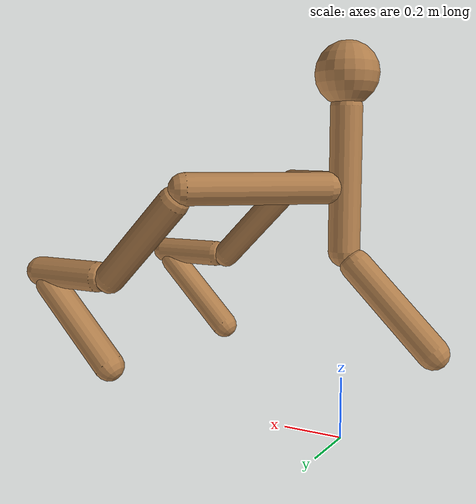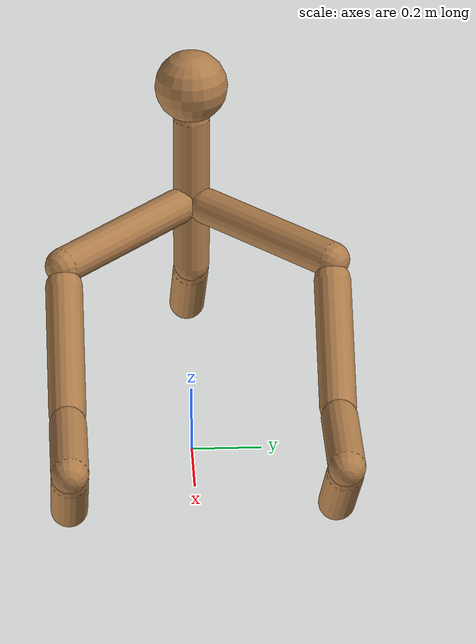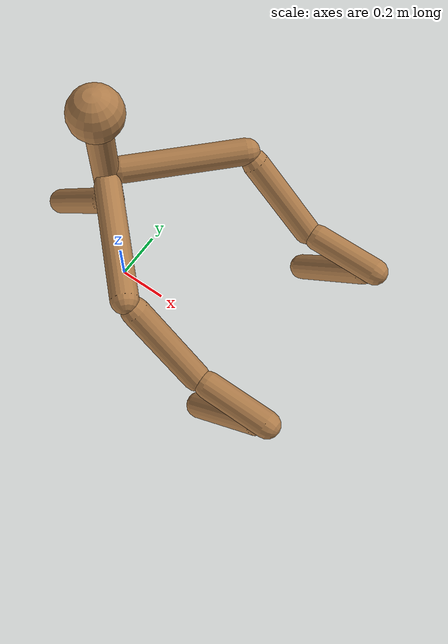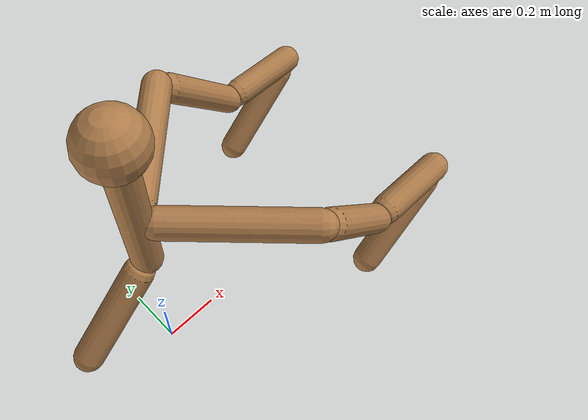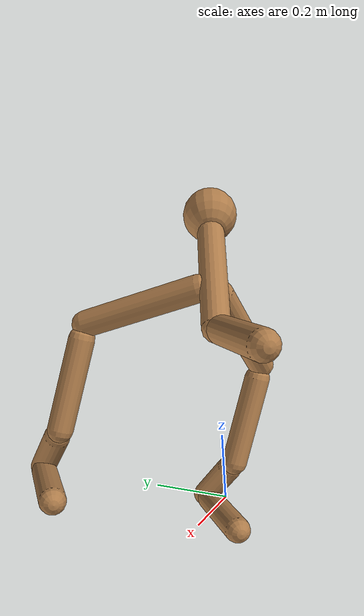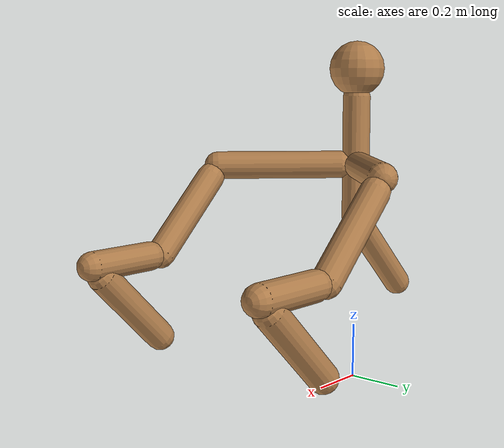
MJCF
<?xml version='1.0' encoding='UTF-8'?>
<!-- Universal Animal Template: unimal -->
<mujoco model="unimal">
  <compiler angle="degree"/>
  <size njmax="2000" nconmax="500"/>
  <option timestep=".005">
    <flag filterparent="disable"/>
  </option>
  <!-- Common defaults to make search space tractable -->
  <default>
    <!-- Define motor defaults -->
    <motor ctrlrange="-1 1" ctrllimited="true"/>
    <!-- Define joint defaults -->
    <default class="normal_joint">
      <joint type="hinge" damping="1" stiffness="1" armature="1" limited="true" range="-120 120" solimplimit="0 0.99 0.01"/>
    </default>
    <default class="walker_joint">
      <joint type="hinge" damping="0.2" stiffness="1" armature=".01" limited="true" range="-120 120" solimplimit="0 0.99 0.01"/>
    </default>
    <default class="stiff_joint">
      <joint type="hinge" damping="5" stiffness="10" armature=".01" limited="true" solimplimit="0 0.99 0.01"/>
    </default>
    <default class="free">
      <joint limited="false" damping="0" armature="0" stiffness="0"/>
    </default>
    <default class="growth_site">
      <site size="1e-6 1e-6 1e-6"/>
    </default>
    <default class="torso_growth_site">
      <site size="1e-6 1e-6 1e-6"/>
    </default>
    <default class="mirror_growth_site">
      <site size="1e-6 1e-6 1e-6"/>
    </default>
    <default class="btm_pos_site">
      <site size="1e-6 1e-6 1e-6"/>
    </default>
    <default class="box_face_site">
      <site size="1e-6 1e-6 1e-6"/>
    </default>
    <default class="imu_vel">
      <site type="box" size="0.05" rgba="1 0 0 1"/>
    </default>
    <default class="touch_site">
      <site group="3" rgba="0 0 1 .3"/>
    </default>
    <default class="food_site">
      <site material="food" size="0.15"/>
    </default>
    <!-- Define geom defaults -->
    <geom type="capsule" condim="3" friction="0.7 0.1 0.1" material="self"/>
  </default>
  <worldbody>
    <light diffuse="1 1 1" directional="true" exponent="1" pos="0 0 1" specular=".1 .1 .1"/>
    <!-- Programatically generated xml goes here -->
    <body name="torso/0" pos="0 0 1.16">
      <joint name="root" type="free" class="free"/>
      <site name="root" class="imu_vel"/>
      <geom name="torso/0" type="sphere" size="0.1" condim="3" density="600"/>
      <camera name="side" pos="0 -7 2" xyaxes="1 0 0 0 1 2" mode="trackcom"/>
      <site name="torso/0" class="growth_site" pos="0 0 0"/>
      <site name="torso/btm_pos/0" class="btm_pos_site" pos="0 0 -0.1"/>
      <site name="torso/touch/0" class="touch_site" size="0.11"/>
      <site name="torso/vertical/0" class="torso_growth_site" pos="0 0 -0.1"/>
      <body name="limb/0" pos="0.0 0.0 -0.1">
        <joint name="limbx/0" type="hinge" class="normal_joint" range="-60 0" pos="0.0 0.0 0.05" axis="1.0 0.0 0.0"/>
        <geom name="limb/0" type="capsule" fromto="0.0 0.0 0.0 0.0 0.0 -0.45" size="0.05" density="800"/>
        <site name="limb/mid/0" class="growth_site" pos="0.0 0.0 -0.25"/>
        <site name="limb/btm/0" class="growth_site" pos="0.0 0.0 -0.45"/>
        <site name="limb/btm_pos/0" class="btm_pos_site" pos="0.0 0.0 -0.45"/>
        <site name="limb/touch/0" class="touch_site" size="0.060000000000000005" fromto="0.0 0.0 0.0 0.0 0.0 -0.45" type="capsule"/>
        <body name="limb/7" pos="-0.04 0.0 -0.49">
          <joint name="limbx/7" type="hinge" class="normal_joint" range="-90 0" pos="0.04 0.0 0.04" axis="0.7071 0.0 -0.7071"/>
          <geom name="limb/7" type="capsule" fromto="0.0 0.0 0.0 -0.25 0.0 -0.25" size="0.05" density="800"/>
          <site name="limb/mid/7" class="growth_site" pos="-0.14 0.0 -0.14"/>
          <site name="limb/btm/7" class="growth_site" pos="-0.25 0.0 -0.25"/>
          <site name="limb/btm_pos/7" class="btm_pos_site" pos="-0.25 0.0 -0.25"/>
          <site name="limb/touch/7" class="touch_site" size="0.060000000000000005" fromto="0.0 0.0 0.0 -0.25 0.0 -0.25" type="capsule"/>
        </body>
        <body name="limb/10" pos="0.04 0.04 -0.25">
          <joint name="limbx/10" type="hinge" class="normal_joint" range="-45 0" pos="-0.04 -0.04 0.0" axis="0.5 -0.5 0.7071"/>
          <geom name="limb/10" type="capsule" fromto="0.0 0.0 0.0 0.32 0.32 0.0" size="0.05" density="800"/>
          <site name="limb/mid/10" class="mirror_growth_site" pos="0.18 0.18 0.0"/>
          <site name="limb/btm/10" class="mirror_growth_site" pos="0.32 0.32 0.0"/>
          <site name="limb/btm_pos/10" class="btm_pos_site" pos="0.35 0.35 0.0"/>
          <site name="limb/touch/10" class="touch_site" size="0.060000000000000005" fromto="0.0 0.0 0.0 0.32 0.32 0.0" type="capsule"/>
          <body name="limb/12" pos="0.36 0.32 -0.04">
            <joint name="limbx/12" type="hinge" class="normal_joint" range="-30 0" pos="-0.04 0.0 0.04" axis="0.7071 0.0 0.7071"/>
            <joint name="limby/12" type="hinge" class="normal_joint" range="-30 30" pos="-0.04 0.0 0.04" axis="-0.0 1.0 0.0"/>
            <geom name="limb/12" type="capsule" fromto="0.0 0.0 0.0 0.25 0.0 -0.25" size="0.05" density="800"/>
            <site name="limb/mid/12" class="mirror_growth_site" pos="0.14 0.0 -0.14"/>
            <site name="limb/btm/12" class="mirror_growth_site" pos="0.25 0.0 -0.25"/>
            <site name="limb/btm_pos/12" class="btm_pos_site" pos="0.28 0.0 -0.28"/>
            <site name="limb/touch/12" class="touch_site" size="0.060000000000000005" fromto="0.0 0.0 0.0 0.25 0.0 -0.25" type="capsule"/>
            <body name="limb/16" pos="0.3 0.0 -0.25">
              <joint name="limbx/16" type="hinge" class="normal_joint" range="-30 30" pos="-0.05 0.0 0.0" axis="0.0 0.0 1.0"/>
              <geom name="limb/16" type="capsule" fromto="0.0 0.0 0.0 0.25 0.0 0.0" size="0.05" density="800"/>
              <site name="limb/mid/16" class="mirror_growth_site" pos="0.15 0.0 0.0"/>
              <site name="limb/btm/16" class="mirror_growth_site" pos="0.25 0.0 0.0"/>
              <site name="limb/btm_pos/16" class="btm_pos_site" pos="0.3 0.0 0.0"/>
              <site name="limb/touch/16" class="touch_site" size="0.060000000000000005" fromto="0.0 0.0 0.0 0.25 0.0 0.0" type="capsule"/>
              <body name="limb/18" pos="0.21 0.0 -0.04">
                <joint name="limbx/18" type="hinge" class="normal_joint" range="0 90" pos="0.04 0.0 0.04" axis="0.7071 0.0 -0.7071"/>
                <joint name="limby/18" type="hinge" class="normal_joint" range="0 45" pos="0.04 0.0 0.04" axis="0.0 1.0 0.0"/>
                <geom name="limb/18" type="capsule" fromto="0.0 0.0 0.0 -0.25 0.0 -0.25" size="0.05" density="800.0"/>
                <site name="limb/mid/18" class="mirror_growth_site" pos="-0.14 0.0 -0.14"/>
                <site name="limb/btm/18" class="mirror_growth_site" pos="-0.25 0.0 -0.25"/>
                <site name="limb/btm_pos/18" class="btm_pos_site" pos="-0.28 0.0 -0.28"/>
                <site name="limb/touch/18" class="touch_site" size="0.060000000000000005" fromto="0.0 0.0 0.0 -0.25 0.0 -0.25" type="capsule"/>
              </body>
            </body>
          </body>
        </body>
        <body name="limb/11" pos="0.04 -0.04 -0.25">
          <joint name="limbx/11" type="hinge" class="normal_joint" range="-45 0" pos="-0.04 0.04 0.0" axis="0.5 0.5 0.7071"/>
          <geom name="limb/11" type="capsule" fromto="0.0 0.0 0.0 0.32 -0.32 0.0" size="0.05" density="800"/>
          <site name="limb/mid/11" class="mirror_growth_site" pos="0.18 -0.18 0.0"/>
          <site name="limb/btm/11" class="mirror_growth_site" pos="0.32 -0.32 0.0"/>
          <site name="limb/btm_pos/11" class="btm_pos_site" pos="0.35 -0.35 0.0"/>
          <site name="limb/touch/11" class="touch_site" size="0.060000000000000005" fromto="0.0 0.0 0.0 0.32 -0.32 0.0" type="capsule"/>
          <body name="limb/13" pos="0.36 -0.32 -0.04">
            <joint name="limbx/13" type="hinge" class="normal_joint" range="-30 0" pos="-0.04 0.0 0.04" axis="0.7071 0.0 0.7071"/>
            <joint name="limby/13" type="hinge" class="normal_joint" range="-30 30" pos="-0.04 0.0 0.04" axis="-0.0 1.0 0.0"/>
            <geom name="limb/13" type="capsule" fromto="0.0 0.0 0.0 0.25 0.0 -0.25" size="0.05" density="800"/>
            <site name="limb/mid/13" class="mirror_growth_site" pos="0.14 0.0 -0.14"/>
            <site name="limb/btm/13" class="mirror_growth_site" pos="0.25 0.0 -0.25"/>
            <site name="limb/btm_pos/13" class="btm_pos_site" pos="0.28 0.0 -0.28"/>
            <site name="limb/touch/13" class="touch_site" size="0.060000000000000005" fromto="0.0 0.0 0.0 0.25 0.0 -0.25" type="capsule"/>
            <body name="limb/17" pos="0.3 0.0 -0.25">
              <joint name="limbx/17" type="hinge" class="normal_joint" range="-30 30" pos="-0.05 0.0 0.0" axis="0.0 0.0 1.0"/>
              <geom name="limb/17" type="capsule" fromto="0.0 0.0 0.0 0.25 0.0 0.0" size="0.05" density="800"/>
              <site name="limb/mid/17" class="mirror_growth_site" pos="0.15 0.0 0.0"/>
              <site name="limb/btm/17" class="mirror_growth_site" pos="0.25 0.0 0.0"/>
              <site name="limb/btm_pos/17" class="btm_pos_site" pos="0.3 0.0 0.0"/>
              <site name="limb/touch/17" class="touch_site" size="0.060000000000000005" fromto="0.0 0.0 0.0 0.25 0.0 0.0" type="capsule"/>
              <body name="limb/19" pos="0.21 0.0 -0.04">
                <joint name="limbx/19" type="hinge" class="normal_joint" range="0 90" pos="0.04 0.0 0.04" axis="0.7071 0.0 -0.7071"/>
                <joint name="limby/19" type="hinge" class="normal_joint" range="0 45" pos="0.04 0.0 0.04" axis="0.0 1.0 0.0"/>
                <geom name="limb/19" type="capsule" fromto="0.0 0.0 0.0 -0.25 0.0 -0.25" size="0.05" density="800.0"/>
                <site name="limb/mid/19" class="mirror_growth_site" pos="-0.14 0.0 -0.14"/>
                <site name="limb/btm/19" class="mirror_growth_site" pos="-0.25 0.0 -0.25"/>
                <site name="limb/btm_pos/19" class="btm_pos_site" pos="-0.28 0.0 -0.28"/>
                <site name="limb/touch/19" class="touch_site" size="0.060000000000000005" fromto="0.0 0.0 0.0 -0.25 0.0 -0.25" type="capsule"/>
              </body>
            </body>
          </body>
        </body>
      </body>
    </body>
  </worldbody>
  <actuator>
    <motor joint="limbx/0" gear="150" name="limbx/0"/>
    <motor joint="limbx/7" gear="200" name="limbx/7"/>
    <motor joint="limbx/10" gear="250" name="limbx/10"/>
    <motor joint="limbx/12" gear="250" name="limbx/12"/>
    <motor joint="limby/12" gear="250" name="limby/12"/>
    <motor joint="limbx/16" gear="300" name="limbx/16"/>
    <motor joint="limbx/18" gear="300" name="limbx/18"/>
    <motor joint="limby/18" gear="250" name="limby/18"/>
    <motor joint="limbx/11" gear="250" name="limbx/11"/>
    <motor joint="limbx/13" gear="250" name="limbx/13"/>
    <motor joint="limby/13" gear="250" name="limby/13"/>
    <motor joint="limbx/17" gear="300" name="limbx/17"/>
    <motor joint="limbx/19" gear="300" name="limbx/19"/>
    <motor joint="limby/19" gear="250" name="limby/19"/>
  </actuator>
  <sensor>
    <accelerometer name="torso_accel" site="root"/>
    <gyro name="torso_gyro" site="root"/>
    <velocimeter name="torso_vel" site="root"/>
    <subtreeangmom name="unimal_am" body="torso/0"/>
    <touch name="torso/0" site="torso/touch/0"/>
    <touch name="limb/0" site="limb/touch/0"/>
    <touch name="limb/7" site="limb/touch/7"/>
    <touch name="limb/10" site="limb/touch/10"/>
    <touch name="limb/12" site="limb/touch/12"/>
    <touch name="limb/16" site="limb/touch/16"/>
    <touch name="limb/18" site="limb/touch/18"/>
    <touch name="limb/11" site="limb/touch/11"/>
    <touch name="limb/13" site="limb/touch/13"/>
    <touch name="limb/17" site="limb/touch/17"/>
    <touch name="limb/19" site="limb/touch/19"/>
  </sensor>
  <!-- Add hfield assets -->
  <asset/>
  <!-- List of contacts to exclude -->
  <contact>
    <exclude name="limb/10:limb/11" body1="limb/10" body2="limb/11"/>
  </contact>
  <!-- Define material, texture etc -->
  <asset>
    <material name="grid" texture="grid" texrepeat="1 1" texuniform="true" reflectance="0"/>
    <material name="hfield" texture="hfield" texrepeat="1 1" texuniform="true" reflectance="0"/>
    <material name="wall" texture="wall" texrepeat="1 1" texuniform="true" reflectance=".5"/>
    <material name="platform" texture="platform" texrepeat="1 1" texuniform="true" reflectance=".5"/>
    <material name="boundary" texture="boundary" texrepeat="1 1" texuniform="true" reflectance=".5"/>
    <material name="jump" texture="jump" texrepeat="1 1" texuniform="true" reflectance=".5"/>
    <material name="goal" rgba="1 0 0 1"/>
    <material name="food" rgba="0 0 1 1" emission="1"/>
    <material name="self" rgba=".7 .5 .3 1"/>
    <material name="self_default" rgba=".7 .5 .3 1"/>
    <material name="self_highlight" rgba="0 .5 .3 1"/>
    <material name="effector" rgba=".7 .4 .2 1"/>
    <material name="effector_default" rgba=".7 .4 .2 1"/>
    <material name="effector_highlight" rgba="0 .5 .3 1"/>
    <material name="decoration" rgba=".3 .5 .7 1"/>
    <material name="eye" rgba="0 .2 1 1"/>
    <material name="target" rgba=".6 .3 .3 1"/>
    <material name="target_default" rgba=".6 .3 .3 1"/>
    <material name="target_highlight" rgba=".6 .3 .3 .4"/>
    <material name="site" rgba=".5 .5 .5 .3"/>
    <material name="ball" texture="ball"/>
  </asset>
  <asset>
    <texture name="grid" type="2d" builtin="checker" rgb1="0.1 0.1 0.1" rgb2="0.1 0.1 0.1" width="300" height="300" mark="edge" markrgb="0.2 0.2 0.2"/>
    <texture name="hfield" type="2d" builtin="checker" rgb1="0.1 0.1 0.1" rgb2="0.1 0.1 0.1" width="300" height="300"/>
    <texture name="wall" type="2d" builtin="flat" rgb1="0.9 0.7 0" rgb2="0.9 0.7 0" width="300" height="300"/>
    <texture name="platform" type="2d" builtin="flat" rgb1="0.3 0 0.8" rgb2="0.3 0 0.8" width="300" height="300"/>
    <texture name="boundary" type="2d" builtin="flat" rgb1="0.3 0.3 0.3" rgb2="0.3 0.3 0.3" width="300" height="300"/>
    <texture name="jump" type="2d" builtin="flat" rgb1="0.3 0.3 0.3" rgb2="0.3 0.3 0.3" width="300" height="300"/>
    <texture name="skybox" type="skybox" builtin="flat" rgb1="0.8 1 1" rgb2="0.8 1 1" width="800" height="800"/>
    <texture name="ball" builtin="checker" mark="cross" width="151" height="151" rgb1="0.1 0.1 0.1" rgb2="0.9 0.9 0.9" markrgb="1 1 1"/>
  </asset>
  <visual>
    <headlight ambient=".4 .4 .4" diffuse=".8 .8 .8" specular="0.1 0.1 0.1"/>
    <map znear=".01"/>
    <quality shadowsize="2048"/>
  </visual>
</mujoco>
